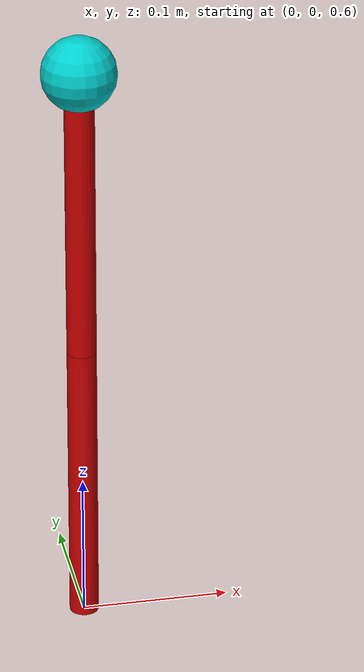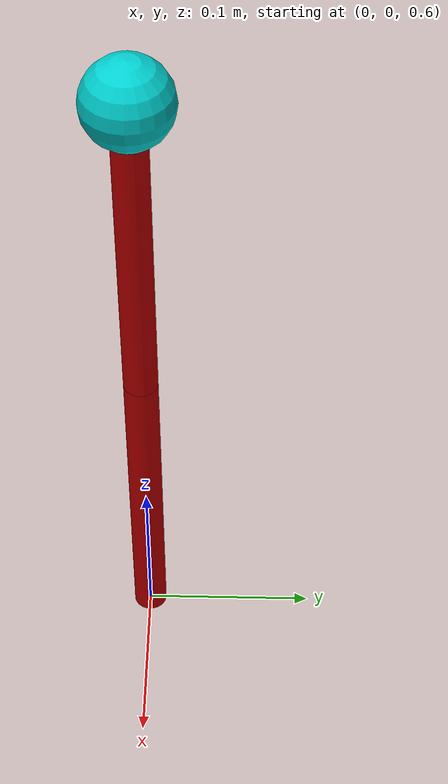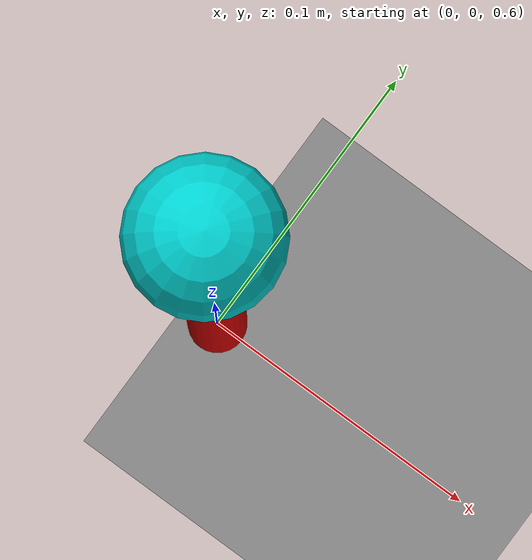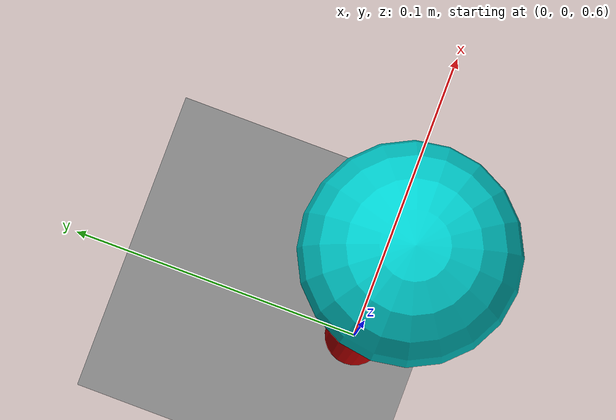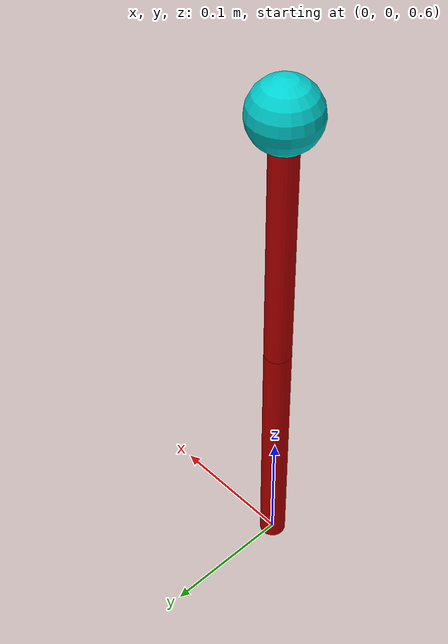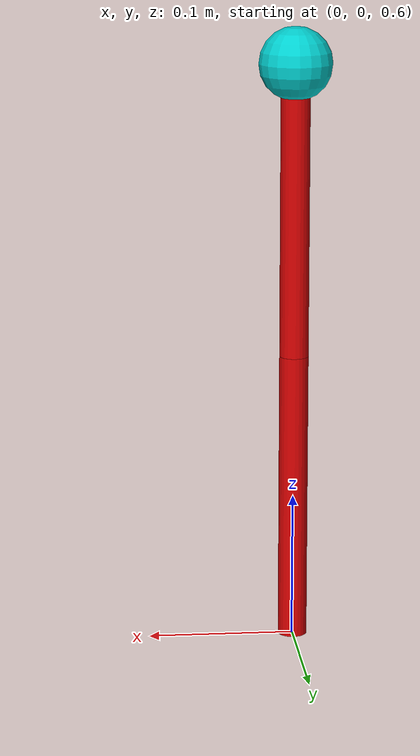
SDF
<?xml version="1.0" ?>
<sdf version="1.6">
  <world name="default">
    <scene>
      <ambient>0.4 0.4 0.4</ambient>
      <grid>false</grid>
    </scene>

    <!-- Light setup for illumination -->
    <light type="directional" name="sun">
      <cast_shadows>false</cast_shadows>
      <pose>5 5 5 0 0 0</pose>
      <diffuse>0.8 0.8 0.8 1</diffuse>
      <specular>0.2 0.2 0.2 1</specular>
      <attenuation>
        <range>1000</range>
        <constant>0.9</constant>
        <linear>0.01</linear>
        <quadratic>0.001</quadratic>
      </attenuation>
      <direction>-1 -1 -1</direction>
    </light>

    <model name="ground_plane">
      <pose>0 0 0 0 0 0</pose> <!-- 水平放置在地面 -->
      <static>true</static>
      <link name="ground_plane_link">
        <collision name="ground_plane_collision">
          <geometry>
            <plane>
              <normal>0 0 1</normal>
              <size>5 5</size>
            </plane>
          </geometry>
        </collision>
        <visual name="ground_plane_visual">
          <geometry>
            <plane>
              <normal>0 0 1</normal>
              <size>5 5</size>
            </plane>
          </geometry>
          <material>
            <diffuse>0.5 0.5 0.5 1</diffuse>
            <specular>0.5 0.5 0.5 1</specular>
          </material>
        </visual>
      </link>
    </model>

    <!-- RR robot (Red) - Position control -->
    <model name="RR_position_control">
      <!-- Set initial pose to be above the ground (suspended) -->
      <pose>0 0 1.0 0 -3.14159 0</pose> <!-- z=1.0 makes it hover above the ground -->

      <!-- Links Definition -->
      <link name="RR_position_control_link0">
        <collision name="RR_position_control_link0_collision_0">
          <geometry>
            <sphere>
              <radius>0.025</radius>
            </sphere>
          </geometry>
        </collision>
        <visual name="RR_position_control_link0_visual_0">
          <geometry>
            <sphere>
              <radius>0.025</radius>
            </sphere>
          </geometry>
          <material>
            <ambient>0 0.5 0.5 1</ambient>
            <diffuse>0 0.8 0.8 1</diffuse>
            <specular>0.8 0.8 0.8 1</specular>
          </material>
        </visual>
      </link>

      <link name="RR_position_control_link1">
        <pose relative_to="RR_position_control_joint1">0 0 0.1 0 0 0</pose>
        <collision name="RR_position_control_link1_collision_0">
          <geometry>
            <cylinder>
              <radius>0.01</radius>
              <length>0.2</length>
            </cylinder>
          </geometry>
        </collision>
        <visual name="RR_position_control_link1_visual_0">
          <geometry>
            <cylinder>
              <radius>0.01</radius>
              <length>0.2</length>
            </cylinder>
          </geometry>
          <material>
            <ambient>0.5 0 0 1</ambient>
            <diffuse>0.8 0 0 1</diffuse>
            <specular>0.8 0 0 1</specular>
          </material>
        </visual>
      </link>

      <link name="RR_position_control_link2">
        <pose relative_to="RR_position_control_joint2">0 0 0.1 0 0 0</pose>
        <collision name="RR_position_control_link2_collision">
          <geometry>
            <cylinder>
              <radius>0.01</radius>
              <length>0.2</length>
            </cylinder>
          </geometry>
        </collision>
        <visual name="RR_position_control_link2_visual">
          <geometry>
            <cylinder>
              <radius>0.01</radius>
              <length>0.2</length>
            </cylinder>
          </geometry>
          <material>
            <ambient>0.5 0 0 1</ambient>
            <diffuse>0.8 0 0 1</diffuse>
            <specular>0.8 0 0 1</specular>
          </material>
        </visual>
      </link>

      <!-- Joints -->
      <joint name="RR_position_control_joint1" type="revolute">
        <pose relative_to="RR_position_control_link0">0 0 0 0 0 0</pose>
        <parent>RR_position_control_link0</parent>
        <child>RR_position_control_link1</child>
        <axis>
          <xyz>1 0 0</xyz>
          <dynamics>
            <damping>0.5</damping>
          </dynamics>
        </axis>
      </joint>

      <joint name="RR_position_control_joint2" type="revolute">
        <pose relative_to="RR_position_control_link1">0 0 0.1 0 0 0</pose>
        <parent>RR_position_control_link1</parent>
        <child>RR_position_control_link2</child>
        <axis>
          <xyz>1 0 0</xyz>
          <dynamics>
            <damping>0.25</damping>
          </dynamics>
        </axis>
      </joint>

      <!-- Controller -->
      <plugin
        filename="gz-sim-joint-trajectory-controller-system"
        name="gz::sim::systems::JointTrajectoryController">
        <joint_name>RR_position_control_joint1</joint_name>
        <initial_position>0.7854</initial_position>
        <position_p_gain>20</position_p_gain>
        <position_i_gain>0.4</position_i_gain>
        <position_d_gain>1.0</position_d_gain>
        <position_i_min>-1</position_i_min>
        <position_i_max>1</position_i_max>
        <position_cmd_min>-20</position_cmd_min>
        <position_cmd_max>20</position_cmd_max>

        <joint_name>RR_position_control_joint2</joint_name>
        <initial_position>-1.5708</initial_position>
        <position_p_gain>10</position_p_gain>
        <position_i_gain>0.2</position_i_gain>
        <position_d_gain>0.5</position_d_gain>
        <position_i_min>-1</position_i_min>
        <position_i_max>1</position_i_max>
        <position_cmd_min>-10</position_cmd_min>
        <position_cmd_max>10</position_cmd_max>
      </plugin>

    </model>
  </world>
</sdf>
